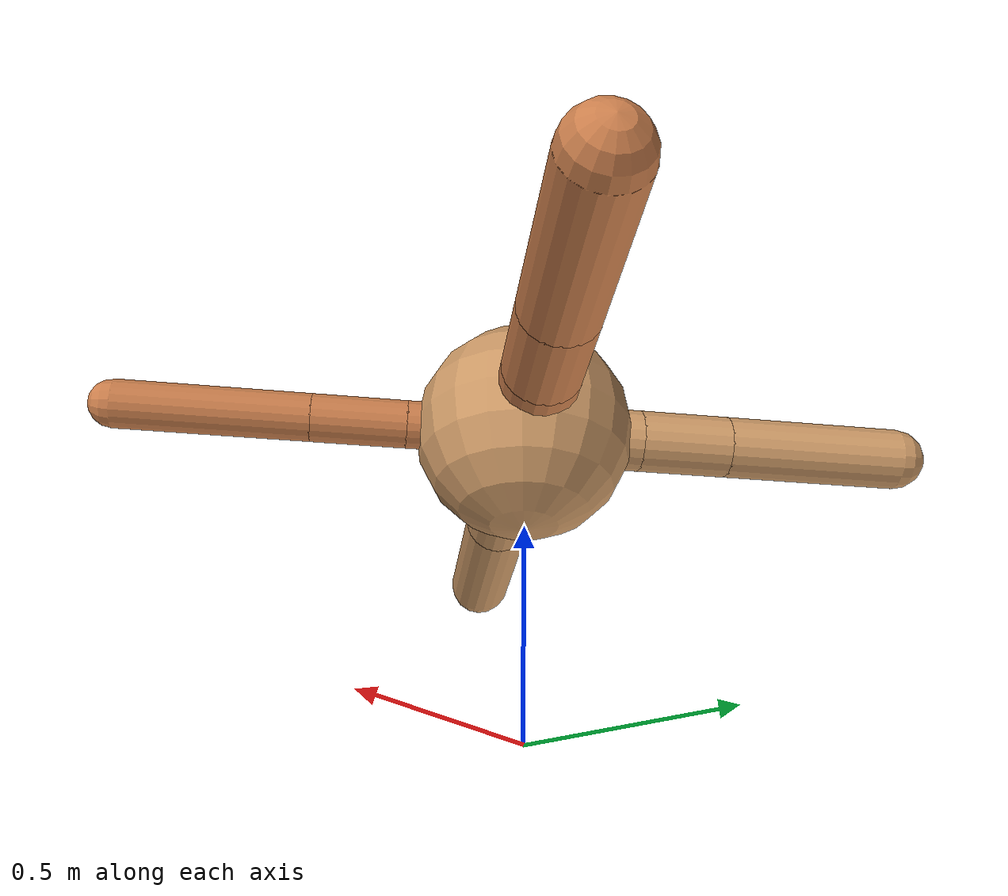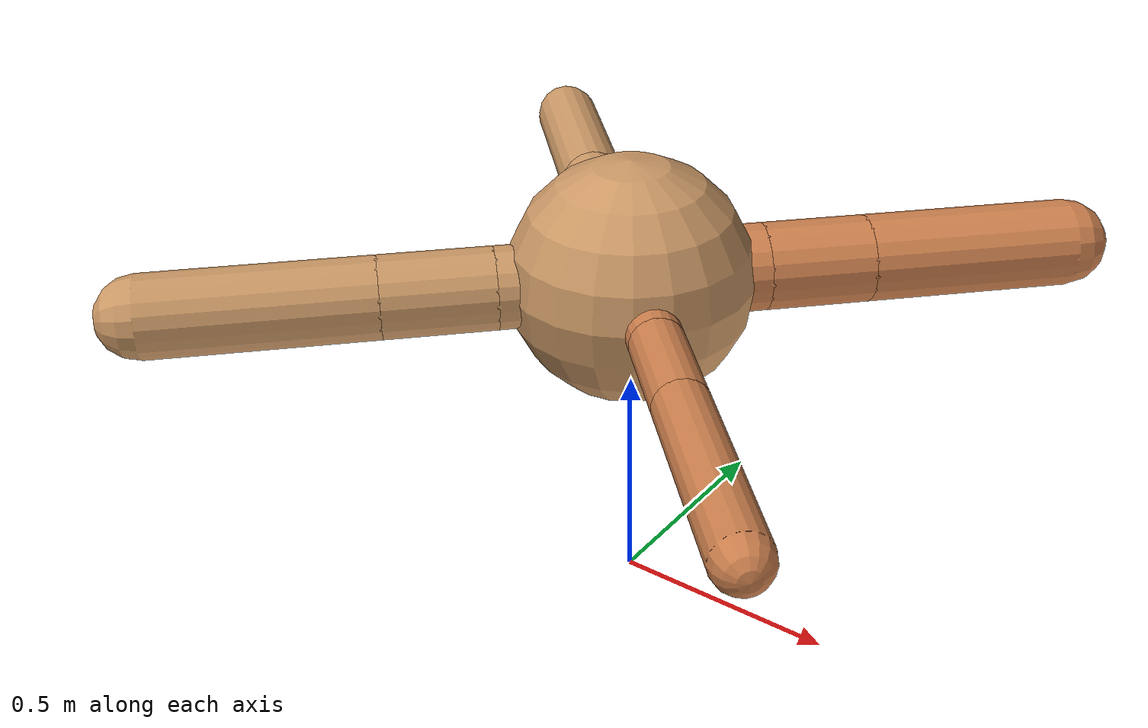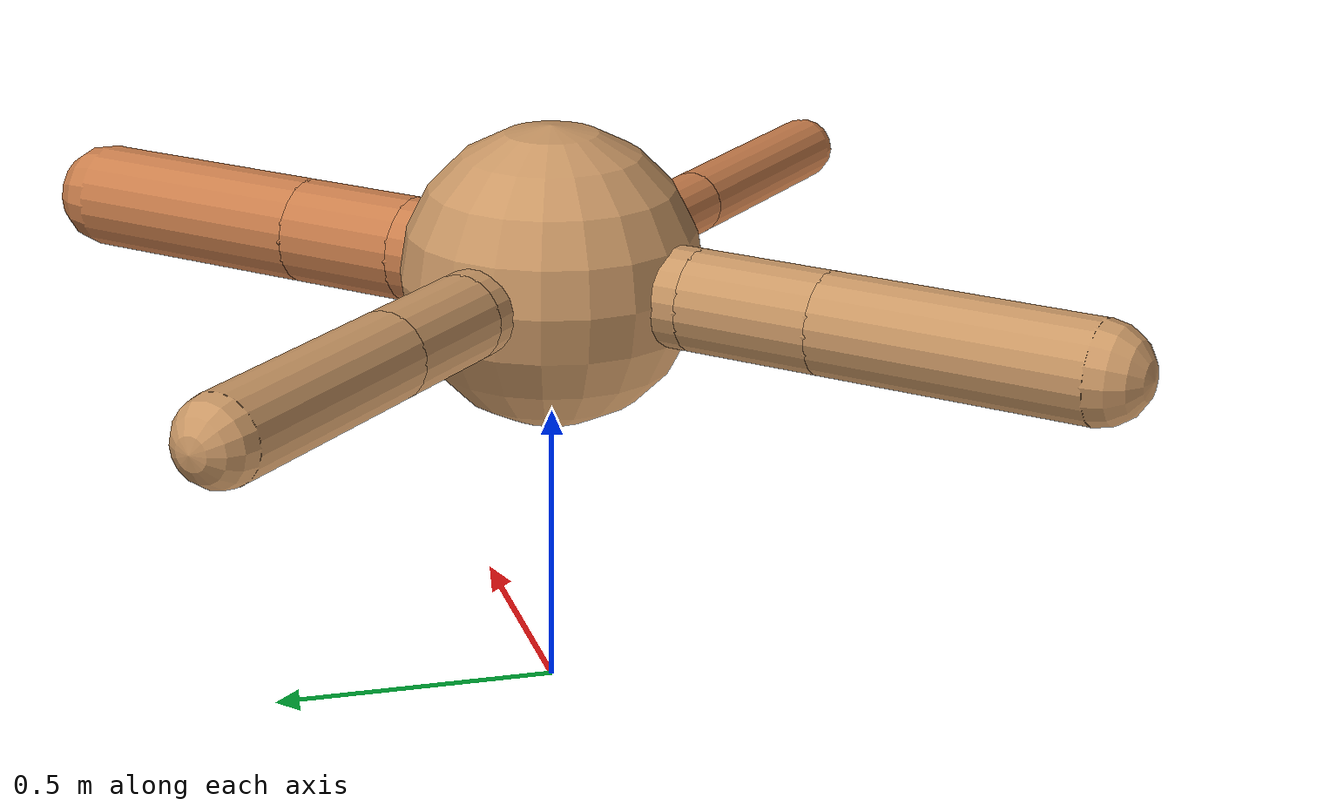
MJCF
<?xml version="1.0" ?>
<mujoco model="ant">

	<compiler angle="degree" coordinate="local" inertiafromgeom="true"/>

	<option integrator="RK4" timestep="0.01"/>

	<custom>

		<numeric data="0.0 0.0 0.55 1.0 0.0 0.0 0.0 0.0 1.0 0.0 -1.0 0.0 -1.0 0.0 1.0" name="init_qpos"/>

	</custom>

	<default>

		<joint armature="1" damping="1" limited="true"/>

		<geom conaffinity="0" condim="3" density="5.0" friction="1.5 0.1 0.1" margin="0.01" rgba="0.8 0.6 0.4 1"/>

	</default>

	<worldbody>

		<body name="torso" pos="0 0 0.75">

			<geom name="torso_geom" pos="0 0 0" size="0.2611473265723861" type="sphere"/>

			<!--joint armature="0" damping="0" limited="false" margin="0.01" name="root" pos="0 0 0" type="free"/-->

			<body name="front_left_leg" pos="0 0 0">

				<geom fromto="0 0 0 0.2 0.2 0" name="aux_1_geom" size="0.09284465111255105" type="capsule" rgba=".8 .5 .3 1"/>

				<body name="aux_1" pos="0.2 0.2 0">

					<joint axis="0 0 1" name="hip_1" pos="0.0 0.0 0.0" range="-40 40" type="hinge"/>

					<geom fromto="0 0 0 0.1584740012056867 0.1584740012056867 0" name="left_leg_geom" size="0.09284465111255105" type="capsule" rgba=".8 .5 .3 1"/>

					<body pos="0.1584740012056867 0.1584740012056867 0" name="front_left_foot">

						<joint axis="-1 1 0" name="ankle_1" pos="0.0 0.0 0.0" range="30 100" type="hinge"/>

						<geom fromto="0 0 0 0.3169480024113734 0.3169480024113734 0" name="left_ankle_geom" size="0.09284465111255105" type="capsule" rgba=".8 .5 .3 1"/>

					</body>

				</body>

			</body>

			<body name="front_right_leg" pos="0 0 0">

				<geom fromto="0 0 0 -0.2 0.2 0" name="aux_2_geom" size="0.07450184364228664" type="capsule"/>

				<body name="aux_2" pos="-0.2 0.2 0">

					<joint axis="0 0 1" name="hip_2" pos="0.0 0.0 0.0" range="-40 40" type="hinge"/>

					<geom fromto="0 0 0 -0.15447288251850916 0.15447288251850916 0" name="right_leg_geom" size="0.07450184364228664" type="capsule"/>

					<body pos="-0.15447288251850916 0.15447288251850916 0" name="front_right_foot">

						<joint axis="1 1 0" name="ankle_2" pos="0.0 0.0 0.0" range="-100 -30" type="hinge"/>

						<geom fromto="0 0 0 -0.3089457650370183 0.3089457650370183 0" name="right_ankle_geom" size="0.07450184364228664" type="capsule"/>

					</body>

				</body>

			</body>

			<body name="left_back_leg" pos="0 0 0">

				<geom fromto="0 0 0 -0.2 -0.2 0" name="aux_3_geom" size="0.08715076995307794" type="capsule"/>

				<body name="aux_3" pos="-0.2 -0.2 0">

					<joint axis="0 0 1" name="hip_3" pos="0.0 0.0 0.0" range="-40 40" type="hinge"/>

					<geom fromto="0 0 0 -0.1672357100100654 -0.1672357100100654 0" name="back_leg_geom" size="0.08715076995307794" type="capsule"/>

					<body pos="-0.1672357100100654 -0.1672357100100654 0" name="left_back_foot">

						<joint axis="-1 1 0" name="ankle_3" pos="0.0 0.0 0.0" range="-100 -30" type="hinge"/>

						<geom fromto="0 0 0 -0.3344714200201308 -0.3344714200201308 0" name="third_ankle_geom" size="0.08715076995307794" type="capsule"/>

					</body>

				</body>

			</body>

			<body name="right_back_leg" pos="0 0 0">

				<geom fromto="0 0 0 0.2 -0.2 0" name="aux_4_geom" size="0.057154866474388825" type="capsule" rgba=".8 .5 .3 1"/>

				<body name="aux_4" pos="0.2 -0.2 0">

					<joint axis="0 0 1" name="hip_4" pos="0.0 0.0 0.0" range="-40 40" type="hinge"/>

					<geom fromto="0 0 0 0.1588257760266689 -0.1588257760266689 0" name="rightback_leg_geom" size="0.057154866474388825" type="capsule" rgba=".8 .5 .3 1"/>

					<body pos="0.1588257760266689 -0.1588257760266689 0" name="right_back_foot">

						<joint axis="1 1 0" name="ankle_4" pos="0.0 0.0 0.0" range="30 100" type="hinge"/>

						<geom fromto="0 0 0 0.3176515520533378 -0.3176515520533378 0" name="fourth_ankle_geom" size="0.057154866474388825" type="capsule" rgba=".8 .5 .3 1"/>

					</body>

				</body>

			</body>

		</body>

	</worldbody>

	<actuator>

		<motor ctrllimited="true" ctrlrange="-1.0 1.0" joint="hip_4" gear="150"/>

		<motor ctrllimited="true" ctrlrange="-1.0 1.0" joint="ankle_4" gear="150"/>

		<motor ctrllimited="true" ctrlrange="-1.0 1.0" joint="hip_1" gear="150"/>

		<motor ctrllimited="true" ctrlrange="-1.0 1.0" joint="ankle_1" gear="150"/>

		<motor ctrllimited="true" ctrlrange="-1.0 1.0" joint="hip_2" gear="150"/>

		<motor ctrllimited="true" ctrlrange="-1.0 1.0" joint="ankle_2" gear="150"/>

		<motor ctrllimited="true" ctrlrange="-1.0 1.0" joint="hip_3" gear="150"/>

		<motor ctrllimited="true" ctrlrange="-1.0 1.0" joint="ankle_3" gear="150"/>

	</actuator>

</mujoco>
